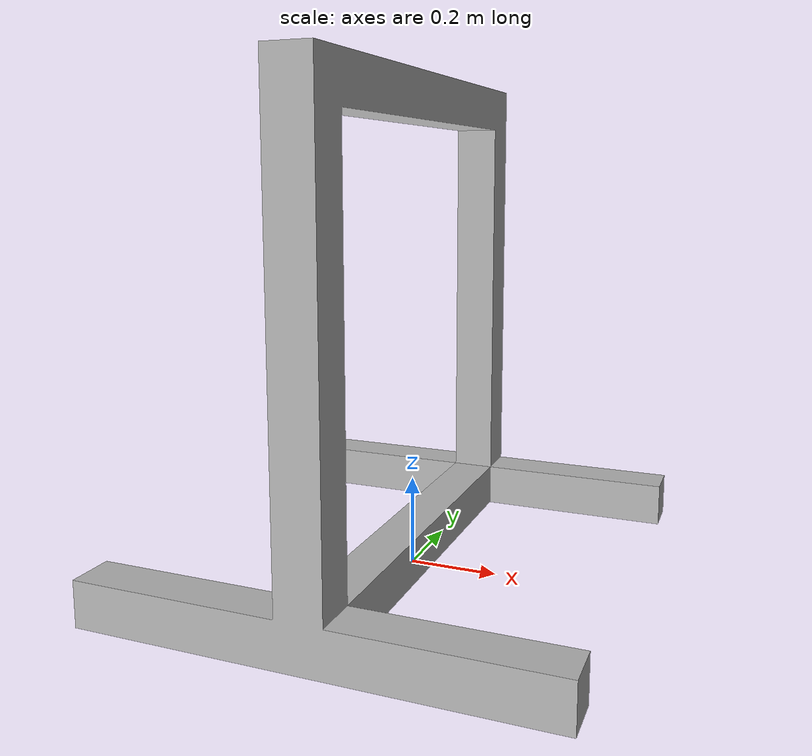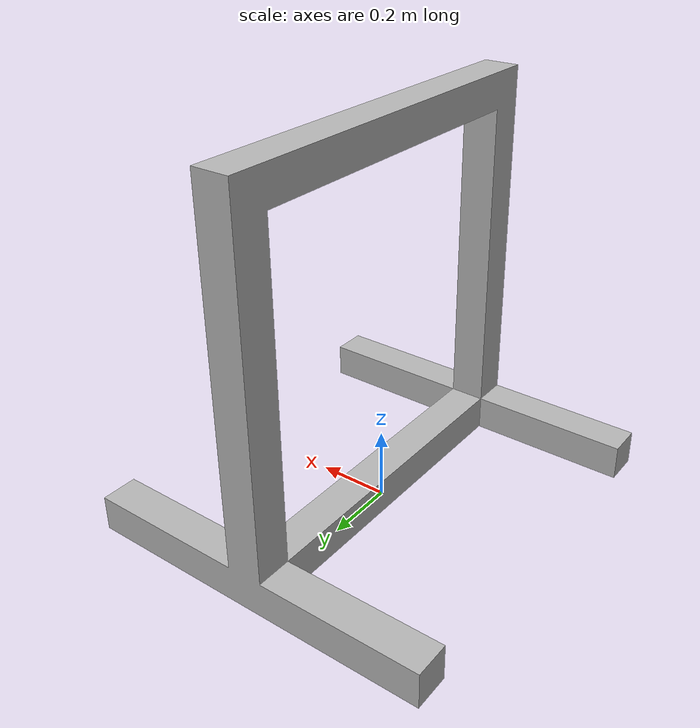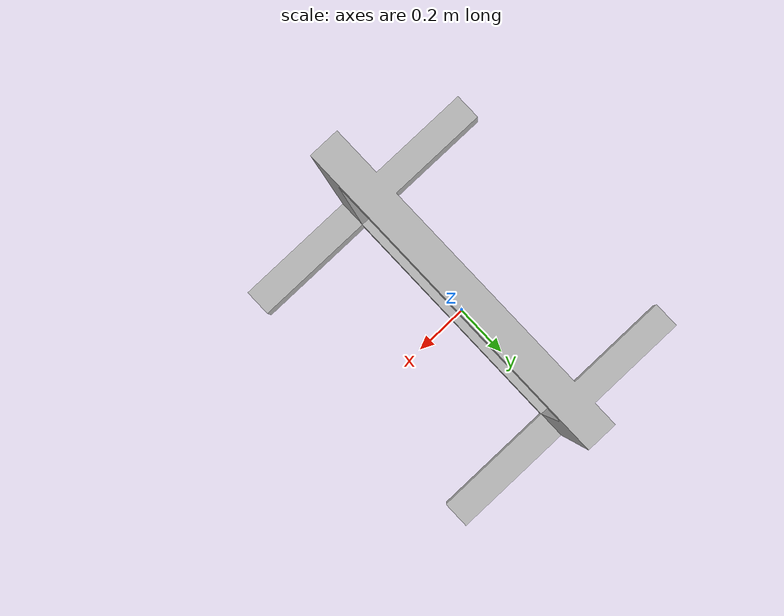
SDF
<sdf version="1.4">
  <model name="clothes stand">
    <static>0</static>
    <link name="link">
      <collision name="colision">
        <pose>0 0 0 0 0 0</pose>
        <geometry>
          <mesh>
            <uri>model://clothes_stand/meshes/clothes_stand.stl</uri>
            <scale> 1 1 1 </scale>
          </mesh>
        </geometry>
        <surface>
          <bounce />
          <friction>
            <ode />
          </friction>
          <contact>
            <ode />
          </contact>
        </surface>
      </collision>

      <visual name="visual">
        <pose>0 0 0 0 0 0</pose>
        <geometry>
          <mesh>
            <uri>model://clothes_stand/meshes/clothes_stand.stl</uri>
            <scale> 1 1 1 </scale>
          </mesh>
        </geometry>
      </visual>

      <velocity_decay>
        <linear>0.000000</linear>
        <angular>0.000000</angular>
      </velocity_decay>
      <self_collide>0</self_collide>
      <kinematic>0</kinematic>
      <gravity>1</gravity>
    </link>
  </model>
</sdf>
